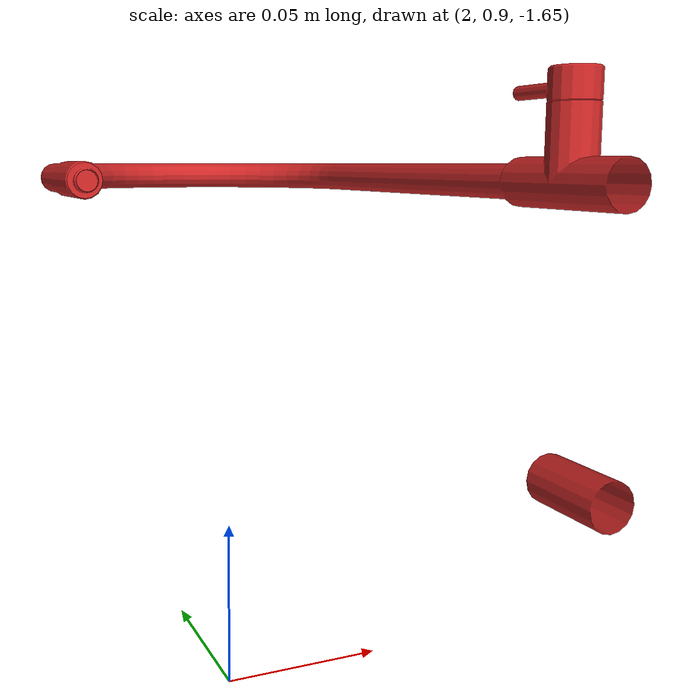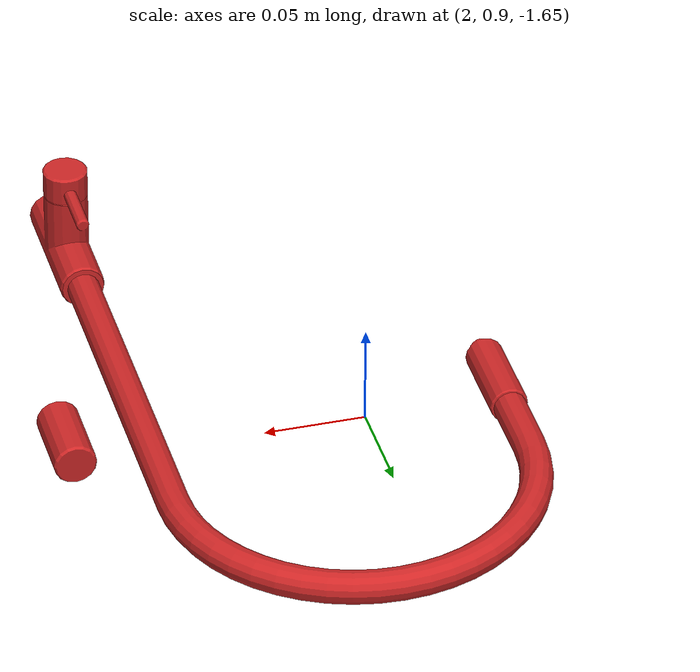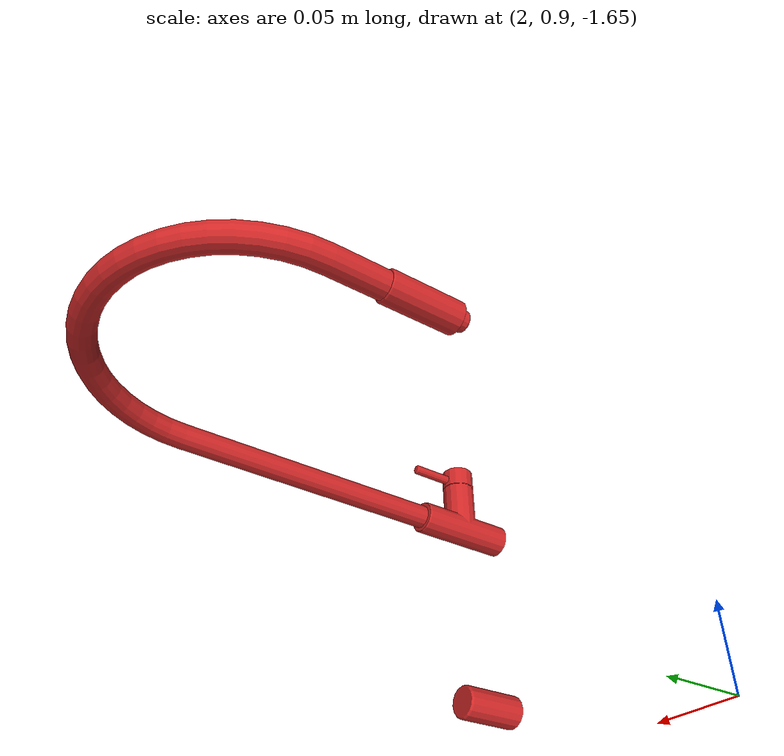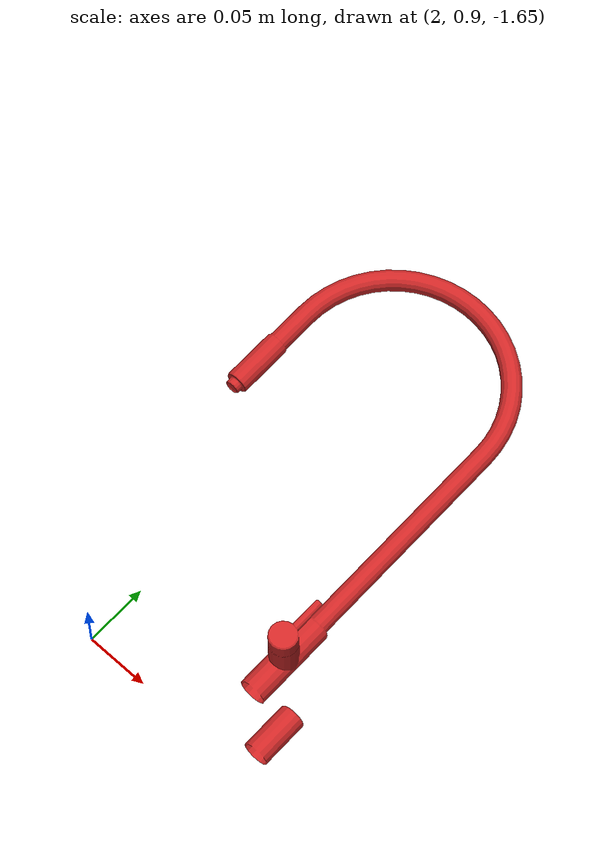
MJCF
<mujoco model="Faucet_1000141d">
  <compiler autolimits="true" boundmass="0.01" angle="radian"/>
  <default>
    <default class="/">
      <default class="__VISUAL_MJT__">
        <geom contype="0" conaffinity="0" group="0" mass="1e-08"/>
      </default>
      <default class="__STRUCTURAL_MJT__">
        <geom contype="8" conaffinity="15" group="4" friction="0.90000000000000002 0.90000000000000002 0.001" density="500" solref="0.025000000000000001 1" solimp="0.998 0.998 0.001"/>
      </default>
      <default class="__DYNAMIC_MJT__">
        <geom contype="1" conaffinity="15" group="4" friction="0.90000000000000002 0.90000000000000002 0.001" density="500" solref="0.025000000000000001 1" solimp="0.998 0.998 0.001"/>
      </default>
      <default class="__ARTICULABLE_DYNAMIC_MJT__">
        <geom contype="0" conaffinity="7" group="4" friction="0.90000000000000002 0.90000000000000002 0.001" density="500" solref="0.025000000000000001 1" solimp="0.998 0.998 0.001"/>
      </default>
    </default>
  </default>
  <asset>
    <texture name="HammeredMetal_AlbedoTransparency" type="2d" file="HammeredMetal_MetallicSmoothness.png"/>
    <material name="material_HammeredMetal_AlbedoTransparency" class="/" texture="HammeredMetal_AlbedoTransparency" specular="0.5" shininess="0.5" rgba="1 1 1 1"/>
    <mesh name="Faucet_1000141d_Vent_b27695c4" class="/" file="Faucet_1000141d_Vent_b27695c4/Faucet_1000141d_Vent_b27695c4.obj" scale="1 1 1" inertia="legacy"/>
    <mesh name="Faucet_1000141d_Tap_6910a943" class="/" file="Faucet_1000141d_Tap_6910a943/Faucet_1000141d_Tap_6910a943.obj" scale="1 1 1" inertia="legacy"/>
  </asset>
  <worldbody>
    <body name="Faucet_1000141d">
      <body name="Faucet_1000141d_Vent_b27695c4" pos="-0 0 0" quat="1 0 0 0">
        <geom name="Faucet_1000141d_Vent_b27695c4" class="__VISUAL_MJT__" type="mesh" material="material_HammeredMetal_AlbedoTransparency" mesh="Faucet_1000141d_Vent_b27695c4"/>
        <geom name="Faucet_1000141d_Vent_b27695c4_PrimitiveCollider_0" class="__DYNAMIC_MJT__" type="box" size="0.013578319922089577 0.14295195043087006 0.015010599046945572" rgba="0 1 0 1" pos="2.15195631980896 1.0417745113372803 -1.4994127750396729" quat="0 0.99999999999976508 0 -6.8545333320442627e-07"/>
        <geom name="Faucet_1000141d_Vent_b27695c4_PrimitiveCollider_1" class="__DYNAMIC_MJT__" type="box" size="0.013578319922089577 0.025211332365870476 0.031870618462562561" rgba="0 1 0 1" pos="2.1519565582275391 0.9431455135345459 -1.4825527667999268" quat="0 0.99999999999976508 0 -6.8545333320442627e-07"/>
        <geom name="Faucet_1000141d_Vent_b27695c4_PrimitiveCollider_2" class="__DYNAMIC_MJT__" type="box" size="0.013578318990767002 0.049395967274904251 0.015010599046945572" rgba="0 1 0 1" pos="2.1265261173248291 1.1918632984161377 -1.4994127750396729" quat="-2.5331970617027203e-07 0.92387961816494557 0.38268322557820417 -6.2584868583243677e-07"/>
        <geom name="Faucet_1000141d_Vent_b27695c4_PrimitiveCollider_3" class="__DYNAMIC_MJT__" type="box" size="0.013578317128121853 0.049395997077226639 0.015010599046945572" rgba="0 1 0 1" pos="2.0685696601867676 1.2138562202453613 -1.4994126558303833" quat="-4.7683712616931122e-07 0.707107138814141 0.70710642355845177 -4.7683712616931122e-07"/>
        <geom name="Faucet_1000141d_Vent_b27695c4_PrimitiveCollider_4" class="__DYNAMIC_MJT__" type="box" size="0.013578326441347599 0.049396008253097534 0.015010599046945572" rgba="0 1 0 1" pos="2.0120368003845215 1.1884260177612305 -1.4994126558303833" quat="-6.2584870948472009e-07 0.38268371687780889 0.92387941466195767 -2.6822087549345148e-07"/>
        <geom name="Faucet_1000141d_Vent_b27695c4_PrimitiveCollider_5" class="__DYNAMIC_MJT__" type="box" size="0.013578326441347599 0.061532333493232727 0.015010599046945572" rgba="0 1 0 1" pos="1.9900437593460083 1.1183332204818726 -1.4994125366210938" quat="-6.8545333320432219e-07 5.5134289844695482e-07 0.9999999999996132 -3.6948217854940116e-13"/>
        <geom name="Faucet_1000141d_Vent_b27695c4_PrimitiveCollider_6" class="__DYNAMIC_MJT__" type="box" size="0.013578319922089577 0.021923063322901726 0.014055739156901836" rgba="0 1 0 1" pos="2.15195631980896 0.9212186336517334 -1.6187659502029419" quat="0 0.99999999999976508 0 -6.8545333320442627e-07"/>
      </body>
      <body name="Faucet_1000141d_Tap_6910a943" pos="-0 0 0" quat="1 0 0 0">
        <geom name="Faucet_1000141d_Tap_6910a943" class="__VISUAL_MJT__" type="mesh" material="material_HammeredMetal_AlbedoTransparency" mesh="Faucet_1000141d_Tap_6910a943"/>
        <geom name="Faucet_1000141d_Tap_6910a943_PrimitiveCollider_0" class="__DYNAMIC_MJT__" type="box" size="0.013578319922089577 0.14295195043087006 0.015010599046945572" rgba="0 1 0 1" pos="2.15195631980896 1.0417745113372803 -1.4994127750396729" quat="0 0.99999999999976508 0 -6.8545333320442627e-07"/>
        <geom name="Faucet_1000141d_Tap_6910a943_PrimitiveCollider_1" class="__DYNAMIC_MJT__" type="box" size="0.013578319922089577 0.025211332365870476 0.031870618462562561" rgba="0 1 0 1" pos="2.1519565582275391 0.9431455135345459 -1.4825527667999268" quat="0 0.99999999999976508 0 -6.8545333320442627e-07"/>
        <geom name="Faucet_1000141d_Tap_6910a943_PrimitiveCollider_2" class="__DYNAMIC_MJT__" type="box" size="0.013578318990767002 0.049395967274904251 0.015010599046945572" rgba="0 1 0 1" pos="2.1265261173248291 1.1918632984161377 -1.4994127750396729" quat="-2.5331970617027203e-07 0.92387961816494557 0.38268322557820417 -6.2584868583243677e-07"/>
        <geom name="Faucet_1000141d_Tap_6910a943_PrimitiveCollider_3" class="__DYNAMIC_MJT__" type="box" size="0.013578317128121853 0.049395997077226639 0.015010599046945572" rgba="0 1 0 1" pos="2.0685696601867676 1.2138562202453613 -1.4994126558303833" quat="-4.7683712616931122e-07 0.707107138814141 0.70710642355845177 -4.7683712616931122e-07"/>
        <geom name="Faucet_1000141d_Tap_6910a943_PrimitiveCollider_4" class="__DYNAMIC_MJT__" type="box" size="0.013578326441347599 0.049396008253097534 0.015010599046945572" rgba="0 1 0 1" pos="2.0120368003845215 1.1884260177612305 -1.4994126558303833" quat="-6.2584870948472009e-07 0.38268371687780889 0.92387941466195767 -2.6822087549345148e-07"/>
        <geom name="Faucet_1000141d_Tap_6910a943_PrimitiveCollider_5" class="__DYNAMIC_MJT__" type="box" size="0.013578326441347599 0.061532333493232727 0.015010599046945572" rgba="0 1 0 1" pos="1.9900437593460083 1.1183332204818726 -1.4994125366210938" quat="-6.8545333320432219e-07 5.5134289844695482e-07 0.9999999999996132 -3.6948217854940116e-13"/>
        <geom name="Faucet_1000141d_Tap_6910a943_PrimitiveCollider_6" class="__DYNAMIC_MJT__" type="box" size="0.013578319922089577 0.021923063322901726 0.014055739156901836" rgba="0 1 0 1" pos="2.15195631980896 0.9212186336517334 -1.6187659502029419" quat="0 0.99999999999976508 0 -6.8545333320442627e-07"/>
      </body>
    </body>
  </worldbody>
</mujoco>
